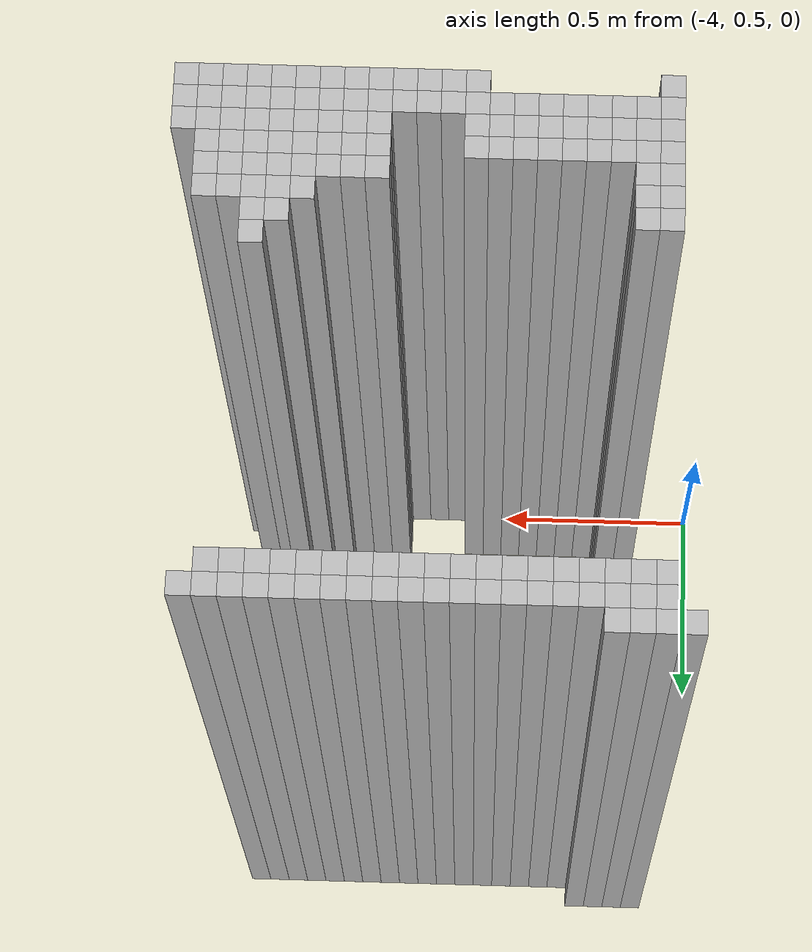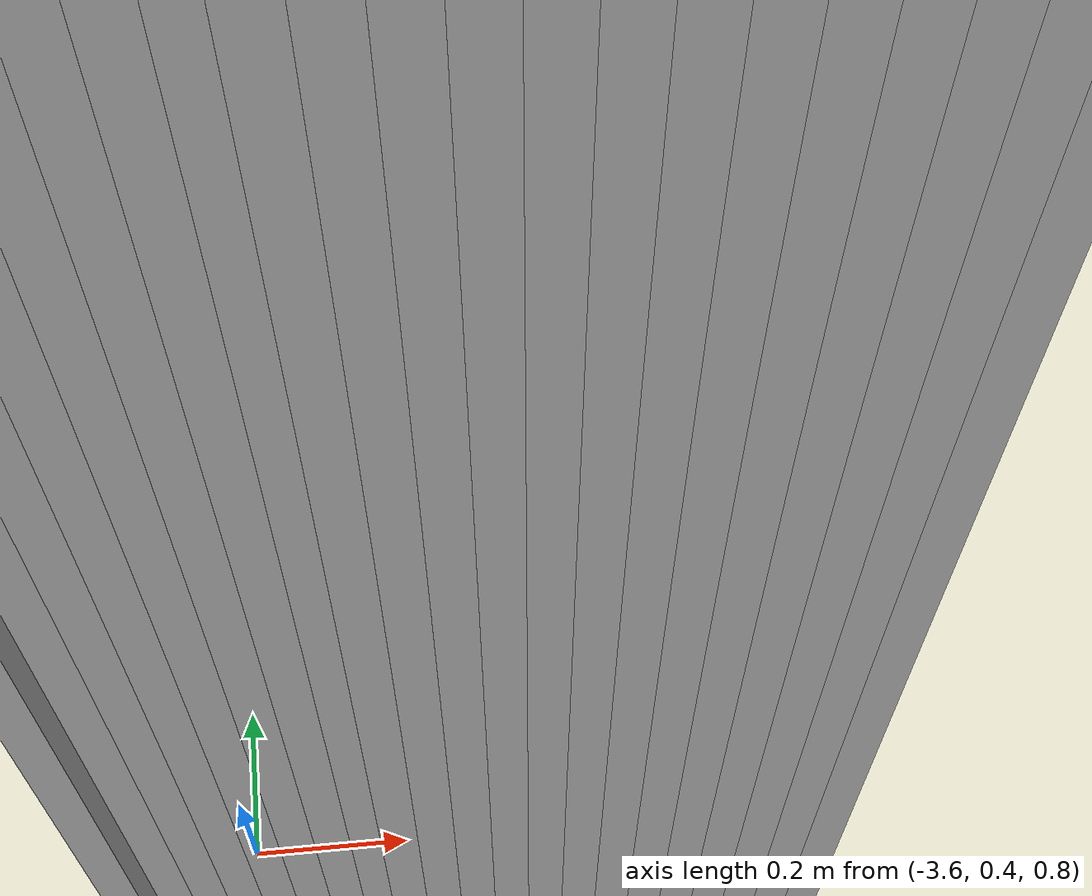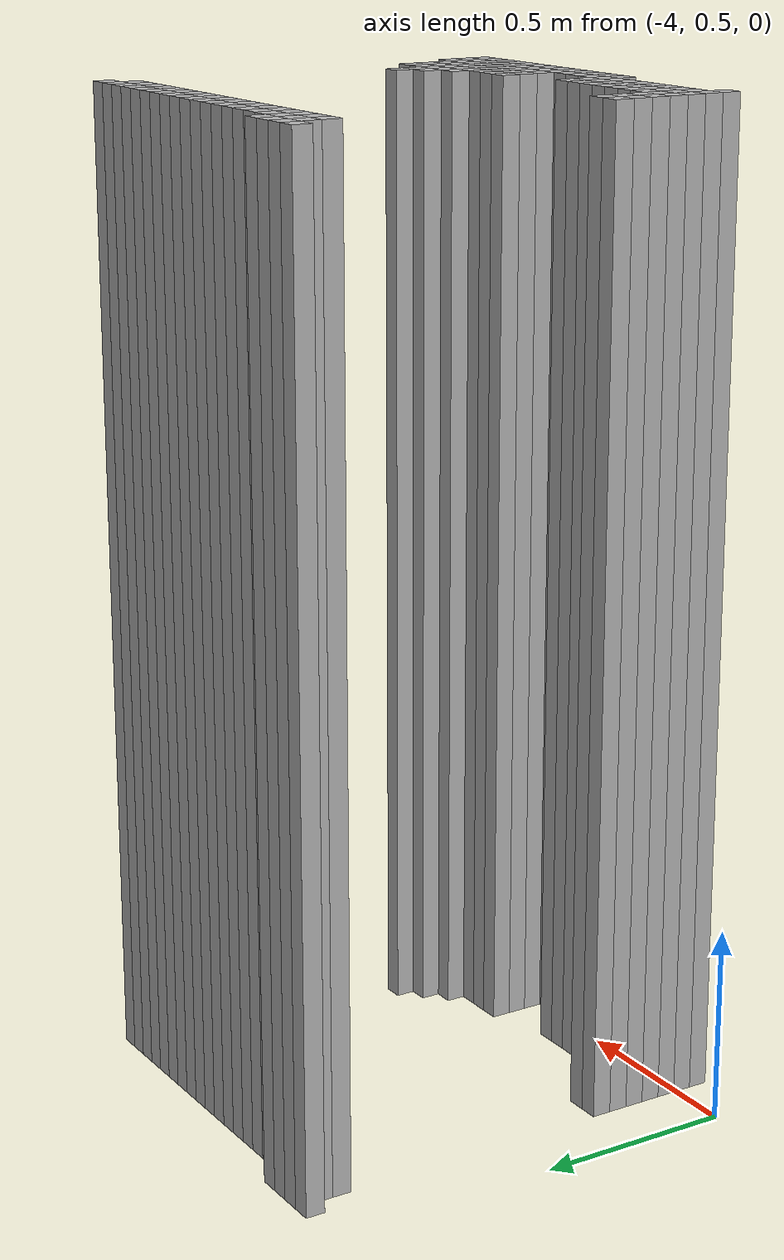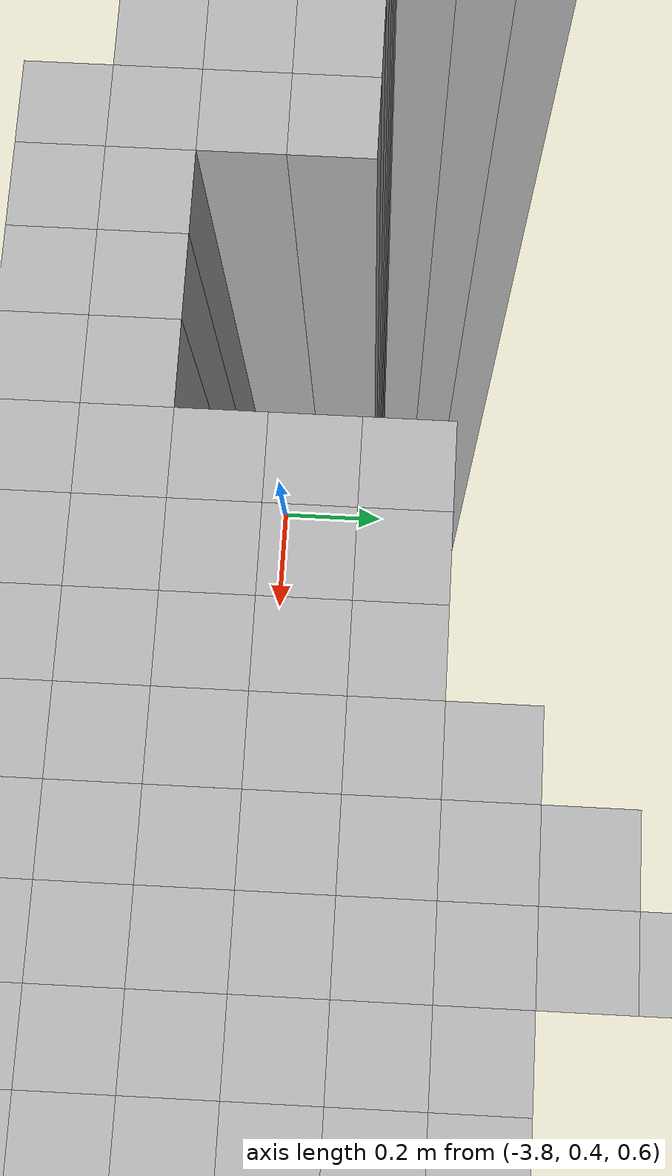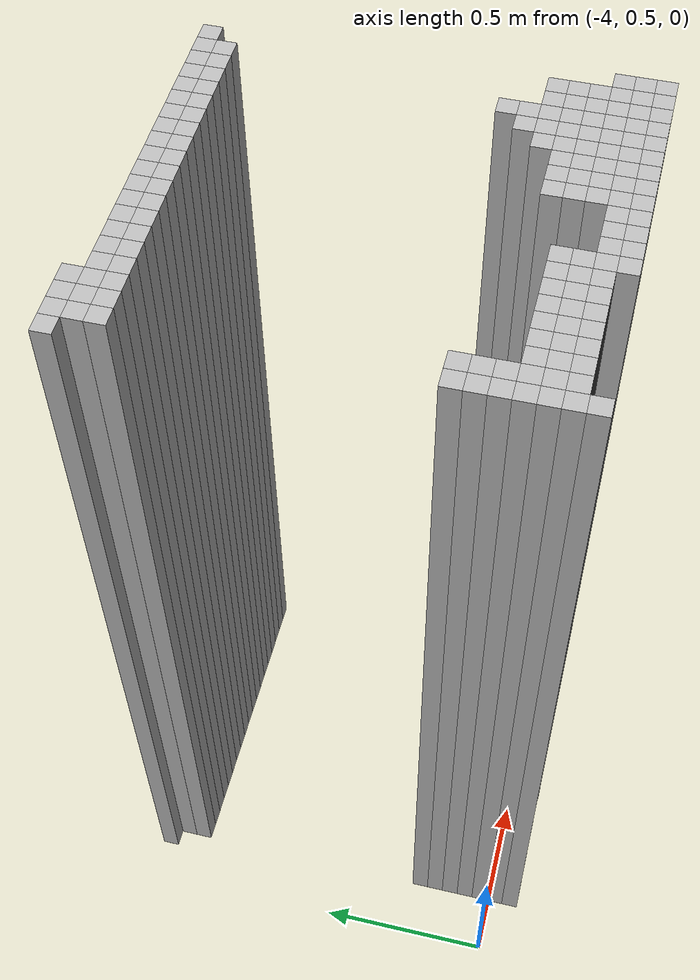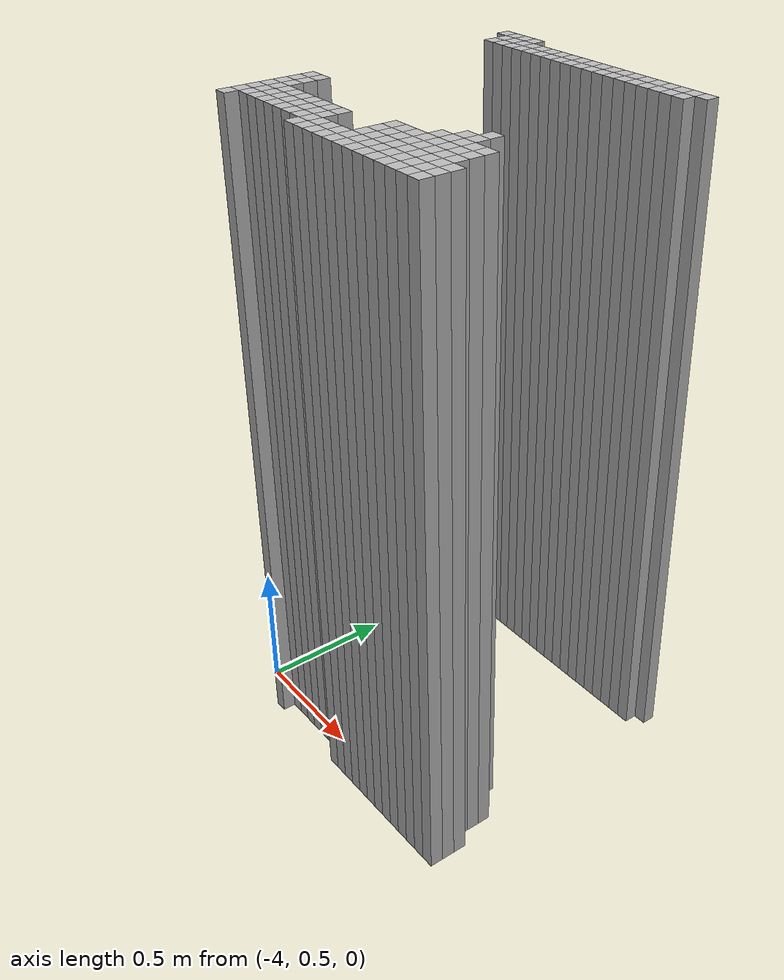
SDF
<sdf version="1.9">
 <world name="map_world">
  <model name="wall_146_122">
   <static>true</static>
   <pose>-3.861 1.580 1.250 0 0 0</pose>
   <link name="link">
    <collision name="collision"><geometry><box><size>0.050 0.050 2.500</size></box></geometry></collision>
    <visual name="visual"><geometry><box><size>0.050 0.050 2.500</size></box></geometry></visual>
   </link>
  </model>
  <model name="wall_147_122">
   <static>true</static>
   <pose>-3.811 1.580 1.250 0 0 0</pose>
   <link name="link">
    <collision name="collision"><geometry><box><size>0.050 0.050 2.500</size></box></geometry></collision>
    <visual name="visual"><geometry><box><size>0.050 0.050 2.500</size></box></geometry></visual>
   </link>
  </model>
  <model name="wall_148_122">
   <static>true</static>
   <pose>-3.761 1.580 1.250 0 0 0</pose>
   <link name="link">
    <collision name="collision"><geometry><box><size>0.050 0.050 2.500</size></box></geometry></collision>
    <visual name="visual"><geometry><box><size>0.050 0.050 2.500</size></box></geometry></visual>
   </link>
  </model>
  <model name="wall_149_122">
   <static>true</static>
   <pose>-3.711 1.580 1.250 0 0 0</pose>
   <link name="link">
    <collision name="collision"><geometry><box><size>0.050 0.050 2.500</size></box></geometry></collision>
    <visual name="visual"><geometry><box><size>0.050 0.050 2.500</size></box></geometry></visual>
   </link>
  </model>
  <model name="wall_147_123">
   <static>true</static>
   <pose>-3.811 1.530 1.250 0 0 0</pose>
   <link name="link">
    <collision name="collision"><geometry><box><size>0.050 0.050 2.500</size></box></geometry></collision>
    <visual name="visual"><geometry><box><size>0.050 0.050 2.500</size></box></geometry></visual>
   </link>
  </model>
  <model name="wall_148_123">
   <static>true</static>
   <pose>-3.761 1.530 1.250 0 0 0</pose>
   <link name="link">
    <collision name="collision"><geometry><box><size>0.050 0.050 2.500</size></box></geometry></collision>
    <visual name="visual"><geometry><box><size>0.050 0.050 2.500</size></box></geometry></visual>
   </link>
  </model>
  <model name="wall_149_123">
   <static>true</static>
   <pose>-3.711 1.530 1.250 0 0 0</pose>
   <link name="link">
    <collision name="collision"><geometry><box><size>0.050 0.050 2.500</size></box></geometry></collision>
    <visual name="visual"><geometry><box><size>0.050 0.050 2.500</size></box></geometry></visual>
   </link>
  </model>
  <model name="wall_150_123">
   <static>true</static>
   <pose>-3.661 1.530 1.250 0 0 0</pose>
   <link name="link">
    <collision name="collision"><geometry><box><size>0.050 0.050 2.500</size></box></geometry></collision>
    <visual name="visual"><geometry><box><size>0.050 0.050 2.500</size></box></geometry></visual>
   </link>
  </model>
  <model name="wall_151_123">
   <static>true</static>
   <pose>-3.611 1.530 1.250 0 0 0</pose>
   <link name="link">
    <collision name="collision"><geometry><box><size>0.050 0.050 2.500</size></box></geometry></collision>
    <visual name="visual"><geometry><box><size>0.050 0.050 2.500</size></box></geometry></visual>
   </link>
  </model>
  <model name="wall_152_123">
   <static>true</static>
   <pose>-3.561 1.530 1.250 0 0 0</pose>
   <link name="link">
    <collision name="collision"><geometry><box><size>0.050 0.050 2.500</size></box></geometry></collision>
    <visual name="visual"><geometry><box><size>0.050 0.050 2.500</size></box></geometry></visual>
   </link>
  </model>
  <model name="wall_153_123">
   <static>true</static>
   <pose>-3.511 1.530 1.250 0 0 0</pose>
   <link name="link">
    <collision name="collision"><geometry><box><size>0.050 0.050 2.500</size></box></geometry></collision>
    <visual name="visual"><geometry><box><size>0.050 0.050 2.500</size></box></geometry></visual>
   </link>
  </model>
  <model name="wall_154_123">
   <static>true</static>
   <pose>-3.461 1.530 1.250 0 0 0</pose>
   <link name="link">
    <collision name="collision"><geometry><box><size>0.050 0.050 2.500</size></box></geometry></collision>
    <visual name="visual"><geometry><box><size>0.050 0.050 2.500</size></box></geometry></visual>
   </link>
  </model>
  <model name="wall_155_123">
   <static>true</static>
   <pose>-3.411 1.530 1.250 0 0 0</pose>
   <link name="link">
    <collision name="collision"><geometry><box><size>0.050 0.050 2.500</size></box></geometry></collision>
    <visual name="visual"><geometry><box><size>0.050 0.050 2.500</size></box></geometry></visual>
   </link>
  </model>
  <model name="wall_156_123">
   <static>true</static>
   <pose>-3.361 1.530 1.250 0 0 0</pose>
   <link name="link">
    <collision name="collision"><geometry><box><size>0.050 0.050 2.500</size></box></geometry></collision>
    <visual name="visual"><geometry><box><size>0.050 0.050 2.500</size></box></geometry></visual>
   </link>
  </model>
  <model name="wall_157_123">
   <static>true</static>
   <pose>-3.311 1.530 1.250 0 0 0</pose>
   <link name="link">
    <collision name="collision"><geometry><box><size>0.050 0.050 2.500</size></box></geometry></collision>
    <visual name="visual"><geometry><box><size>0.050 0.050 2.500</size></box></geometry></visual>
   </link>
  </model>
  <model name="wall_158_123">
   <static>true</static>
   <pose>-3.261 1.530 1.250 0 0 0</pose>
   <link name="link">
    <collision name="collision"><geometry><box><size>0.050 0.050 2.500</size></box></geometry></collision>
    <visual name="visual"><geometry><box><size>0.050 0.050 2.500</size></box></geometry></visual>
   </link>
  </model>
  <model name="wall_159_123">
   <static>true</static>
   <pose>-3.211 1.530 1.250 0 0 0</pose>
   <link name="link">
    <collision name="collision"><geometry><box><size>0.050 0.050 2.500</size></box></geometry></collision>
    <visual name="visual"><geometry><box><size>0.050 0.050 2.500</size></box></geometry></visual>
   </link>
  </model>
  <model name="wall_160_123">
   <static>true</static>
   <pose>-3.161 1.530 1.250 0 0 0</pose>
   <link name="link">
    <collision name="collision"><geometry><box><size>0.050 0.050 2.500</size></box></geometry></collision>
    <visual name="visual"><geometry><box><size>0.050 0.050 2.500</size></box></geometry></visual>
   </link>
  </model>
  <model name="wall_161_123">
   <static>true</static>
   <pose>-3.111 1.530 1.250 0 0 0</pose>
   <link name="link">
    <collision name="collision"><geometry><box><size>0.050 0.050 2.500</size></box></geometry></collision>
    <visual name="visual"><geometry><box><size>0.050 0.050 2.500</size></box></geometry></visual>
   </link>
  </model>
  <model name="wall_162_123">
   <static>true</static>
   <pose>-3.061 1.530 1.250 0 0 0</pose>
   <link name="link">
    <collision name="collision"><geometry><box><size>0.050 0.050 2.500</size></box></geometry></collision>
    <visual name="visual"><geometry><box><size>0.050 0.050 2.500</size></box></geometry></visual>
   </link>
  </model>
  <model name="wall_163_123">
   <static>true</static>
   <pose>-3.011 1.530 1.250 0 0 0</pose>
   <link name="link">
    <collision name="collision"><geometry><box><size>0.050 0.050 2.500</size></box></geometry></collision>
    <visual name="visual"><geometry><box><size>0.050 0.050 2.500</size></box></geometry></visual>
   </link>
  </model>
  <model name="wall_164_123">
   <static>true</static>
   <pose>-2.961 1.530 1.250 0 0 0</pose>
   <link name="link">
    <collision name="collision"><geometry><box><size>0.050 0.050 2.500</size></box></geometry></collision>
    <visual name="visual"><geometry><box><size>0.050 0.050 2.500</size></box></geometry></visual>
   </link>
  </model>
  <model name="wall_165_123">
   <static>true</static>
   <pose>-2.911 1.530 1.250 0 0 0</pose>
   <link name="link">
    <collision name="collision"><geometry><box><size>0.050 0.050 2.500</size></box></geometry></collision>
    <visual name="visual"><geometry><box><size>0.050 0.050 2.500</size></box></geometry></visual>
   </link>
  </model>
  <model name="wall_166_123">
   <static>true</static>
   <pose>-2.861 1.530 1.250 0 0 0</pose>
   <link name="link">
    <collision name="collision"><geometry><box><size>0.050 0.050 2.500</size></box></geometry></collision>
    <visual name="visual"><geometry><box><size>0.050 0.050 2.500</size></box></geometry></visual>
   </link>
  </model>
  <model name="wall_147_124">
   <static>true</static>
   <pose>-3.811 1.480 1.250 0 0 0</pose>
   <link name="link">
    <collision name="collision"><geometry><box><size>0.050 0.050 2.500</size></box></geometry></collision>
    <visual name="visual"><geometry><box><size>0.050 0.050 2.500</size></box></geometry></visual>
   </link>
  </model>
  <model name="wall_148_124">
   <static>true</static>
   <pose>-3.761 1.480 1.250 0 0 0</pose>
   <link name="link">
    <collision name="collision"><geometry><box><size>0.050 0.050 2.500</size></box></geometry></collision>
    <visual name="visual"><geometry><box><size>0.050 0.050 2.500</size></box></geometry></visual>
   </link>
  </model>
  <model name="wall_149_124">
   <static>true</static>
   <pose>-3.711 1.480 1.250 0 0 0</pose>
   <link name="link">
    <collision name="collision"><geometry><box><size>0.050 0.050 2.500</size></box></geometry></collision>
    <visual name="visual"><geometry><box><size>0.050 0.050 2.500</size></box></geometry></visual>
   </link>
  </model>
  <model name="wall_150_124">
   <static>true</static>
   <pose>-3.661 1.480 1.250 0 0 0</pose>
   <link name="link">
    <collision name="collision"><geometry><box><size>0.050 0.050 2.500</size></box></geometry></collision>
    <visual name="visual"><geometry><box><size>0.050 0.050 2.500</size></box></geometry></visual>
   </link>
  </model>
  <model name="wall_151_124">
   <static>true</static>
   <pose>-3.611 1.480 1.250 0 0 0</pose>
   <link name="link">
    <collision name="collision"><geometry><box><size>0.050 0.050 2.500</size></box></geometry></collision>
    <visual name="visual"><geometry><box><size>0.050 0.050 2.500</size></box></geometry></visual>
   </link>
  </model>
  <model name="wall_152_124">
   <static>true</static>
   <pose>-3.561 1.480 1.250 0 0 0</pose>
   <link name="link">
    <collision name="collision"><geometry><box><size>0.050 0.050 2.500</size></box></geometry></collision>
    <visual name="visual"><geometry><box><size>0.050 0.050 2.500</size></box></geometry></visual>
   </link>
  </model>
  <model name="wall_153_124">
   <static>true</static>
   <pose>-3.511 1.480 1.250 0 0 0</pose>
   <link name="link">
    <collision name="collision"><geometry><box><size>0.050 0.050 2.500</size></box></geometry></collision>
    <visual name="visual"><geometry><box><size>0.050 0.050 2.500</size></box></geometry></visual>
   </link>
  </model>
  <model name="wall_154_124">
   <static>true</static>
   <pose>-3.461 1.480 1.250 0 0 0</pose>
   <link name="link">
    <collision name="collision"><geometry><box><size>0.050 0.050 2.500</size></box></geometry></collision>
    <visual name="visual"><geometry><box><size>0.050 0.050 2.500</size></box></geometry></visual>
   </link>
  </model>
  <model name="wall_155_124">
   <static>true</static>
   <pose>-3.411 1.480 1.250 0 0 0</pose>
   <link name="link">
    <collision name="collision"><geometry><box><size>0.050 0.050 2.500</size></box></geometry></collision>
    <visual name="visual"><geometry><box><size>0.050 0.050 2.500</size></box></geometry></visual>
   </link>
  </model>
  <model name="wall_156_124">
   <static>true</static>
   <pose>-3.361 1.480 1.250 0 0 0</pose>
   <link name="link">
    <collision name="collision"><geometry><box><size>0.050 0.050 2.500</size></box></geometry></collision>
    <visual name="visual"><geometry><box><size>0.050 0.050 2.500</size></box></geometry></visual>
   </link>
  </model>
  <model name="wall_157_124">
   <static>true</static>
   <pose>-3.311 1.480 1.250 0 0 0</pose>
   <link name="link">
    <collision name="collision"><geometry><box><size>0.050 0.050 2.500</size></box></geometry></collision>
    <visual name="visual"><geometry><box><size>0.050 0.050 2.500</size></box></geometry></visual>
   </link>
  </model>
  <model name="wall_158_124">
   <static>true</static>
   <pose>-3.261 1.480 1.250 0 0 0</pose>
   <link name="link">
    <collision name="collision"><geometry><box><size>0.050 0.050 2.500</size></box></geometry></collision>
    <visual name="visual"><geometry><box><size>0.050 0.050 2.500</size></box></geometry></visual>
   </link>
  </model>
  <model name="wall_159_124">
   <static>true</static>
   <pose>-3.211 1.480 1.250 0 0 0</pose>
   <link name="link">
    <collision name="collision"><geometry><box><size>0.050 0.050 2.500</size></box></geometry></collision>
    <visual name="visual"><geometry><box><size>0.050 0.050 2.500</size></box></geometry></visual>
   </link>
  </model>
  <model name="wall_160_124">
   <static>true</static>
   <pose>-3.161 1.480 1.250 0 0 0</pose>
   <link name="link">
    <collision name="collision"><geometry><box><size>0.050 0.050 2.500</size></box></geometry></collision>
    <visual name="visual"><geometry><box><size>0.050 0.050 2.500</size></box></geometry></visual>
   </link>
  </model>
  <model name="wall_161_124">
   <static>true</static>
   <pose>-3.111 1.480 1.250 0 0 0</pose>
   <link name="link">
    <collision name="collision"><geometry><box><size>0.050 0.050 2.500</size></box></geometry></collision>
    <visual name="visual"><geometry><box><size>0.050 0.050 2.500</size></box></geometry></visual>
   </link>
  </model>
  <model name="wall_162_124">
   <static>true</static>
   <pose>-3.061 1.480 1.250 0 0 0</pose>
   <link name="link">
    <collision name="collision"><geometry><box><size>0.050 0.050 2.500</size></box></geometry></collision>
    <visual name="visual"><geometry><box><size>0.050 0.050 2.500</size></box></geometry></visual>
   </link>
  </model>
  <model name="wall_163_124">
   <static>true</static>
   <pose>-3.011 1.480 1.250 0 0 0</pose>
   <link name="link">
    <collision name="collision"><geometry><box><size>0.050 0.050 2.500</size></box></geometry></collision>
    <visual name="visual"><geometry><box><size>0.050 0.050 2.500</size></box></geometry></visual>
   </link>
  </model>
  <model name="wall_164_124">
   <static>true</static>
   <pose>-2.961 1.480 1.250 0 0 0</pose>
   <link name="link">
    <collision name="collision"><geometry><box><size>0.050 0.050 2.500</size></box></geometry></collision>
    <visual name="visual"><geometry><box><size>0.050 0.050 2.500</size></box></geometry></visual>
   </link>
  </model>
  <model name="wall_165_124">
   <static>true</static>
   <pose>-2.911 1.480 1.250 0 0 0</pose>
   <link name="link">
    <collision name="collision"><geometry><box><size>0.050 0.050 2.500</size></box></geometry></collision>
    <visual name="visual"><geometry><box><size>0.050 0.050 2.500</size></box></geometry></visual>
   </link>
  </model>
  <model name="wall_164_138">
   <static>true</static>
   <pose>-2.961 0.780 1.250 0 0 0</pose>
   <link name="link">
    <collision name="collision"><geometry><box><size>0.050 0.050 2.500</size></box></geometry></collision>
    <visual name="visual"><geometry><box><size>0.050 0.050 2.500</size></box></geometry></visual>
   </link>
  </model>
  <model name="wall_147_139">
   <static>true</static>
   <pose>-3.811 0.730 1.250 0 0 0</pose>
   <link name="link">
    <collision name="collision"><geometry><box><size>0.050 0.050 2.500</size></box></geometry></collision>
    <visual name="visual"><geometry><box><size>0.050 0.050 2.500</size></box></geometry></visual>
   </link>
  </model>
  <model name="wall_148_139">
   <static>true</static>
   <pose>-3.761 0.730 1.250 0 0 0</pose>
   <link name="link">
    <collision name="collision"><geometry><box><size>0.050 0.050 2.500</size></box></geometry></collision>
    <visual name="visual"><geometry><box><size>0.050 0.050 2.500</size></box></geometry></visual>
   </link>
  </model>
  <model name="wall_163_139">
   <static>true</static>
   <pose>-3.011 0.730 1.250 0 0 0</pose>
   <link name="link">
    <collision name="collision"><geometry><box><size>0.050 0.050 2.500</size></box></geometry></collision>
    <visual name="visual"><geometry><box><size>0.050 0.050 2.500</size></box></geometry></visual>
   </link>
  </model>
  <model name="wall_164_139">
   <static>true</static>
   <pose>-2.961 0.730 1.250 0 0 0</pose>
   <link name="link">
    <collision name="collision"><geometry><box><size>0.050 0.050 2.500</size></box></geometry></collision>
    <visual name="visual"><geometry><box><size>0.050 0.050 2.500</size></box></geometry></visual>
   </link>
  </model>
  <model name="wall_147_140">
   <static>true</static>
   <pose>-3.811 0.680 1.250 0 0 0</pose>
   <link name="link">
    <collision name="collision"><geometry><box><size>0.050 0.050 2.500</size></box></geometry></collision>
    <visual name="visual"><geometry><box><size>0.050 0.050 2.500</size></box></geometry></visual>
   </link>
  </model>
  <model name="wall_148_140">
   <static>true</static>
   <pose>-3.761 0.680 1.250 0 0 0</pose>
   <link name="link">
    <collision name="collision"><geometry><box><size>0.050 0.050 2.500</size></box></geometry></collision>
    <visual name="visual"><geometry><box><size>0.050 0.050 2.500</size></box></geometry></visual>
   </link>
  </model>
  <model name="wall_162_140">
   <static>true</static>
   <pose>-3.061 0.680 1.250 0 0 0</pose>
   <link name="link">
    <collision name="collision"><geometry><box><size>0.050 0.050 2.500</size></box></geometry></collision>
    <visual name="visual"><geometry><box><size>0.050 0.050 2.500</size></box></geometry></visual>
   </link>
  </model>
  <model name="wall_163_140">
   <static>true</static>
   <pose>-3.011 0.680 1.250 0 0 0</pose>
   <link name="link">
    <collision name="collision"><geometry><box><size>0.050 0.050 2.500</size></box></geometry></collision>
    <visual name="visual"><geometry><box><size>0.050 0.050 2.500</size></box></geometry></visual>
   </link>
  </model>
  <model name="wall_164_140">
   <static>true</static>
   <pose>-2.961 0.680 1.250 0 0 0</pose>
   <link name="link">
    <collision name="collision"><geometry><box><size>0.050 0.050 2.500</size></box></geometry></collision>
    <visual name="visual"><geometry><box><size>0.050 0.050 2.500</size></box></geometry></visual>
   </link>
  </model>
  <model name="wall_165_140">
   <static>true</static>
   <pose>-2.911 0.680 1.250 0 0 0</pose>
   <link name="link">
    <collision name="collision"><geometry><box><size>0.050 0.050 2.500</size></box></geometry></collision>
    <visual name="visual"><geometry><box><size>0.050 0.050 2.500</size></box></geometry></visual>
   </link>
  </model>
  <model name="wall_166_140">
   <static>true</static>
   <pose>-2.861 0.680 1.250 0 0 0</pose>
   <link name="link">
    <collision name="collision"><geometry><box><size>0.050 0.050 2.500</size></box></geometry></collision>
    <visual name="visual"><geometry><box><size>0.050 0.050 2.500</size></box></geometry></visual>
   </link>
  </model>
  <model name="wall_147_141">
   <static>true</static>
   <pose>-3.811 0.630 1.250 0 0 0</pose>
   <link name="link">
    <collision name="collision"><geometry><box><size>0.050 0.050 2.500</size></box></geometry></collision>
    <visual name="visual"><geometry><box><size>0.050 0.050 2.500</size></box></geometry></visual>
   </link>
  </model>
  <model name="wall_148_141">
   <static>true</static>
   <pose>-3.761 0.630 1.250 0 0 0</pose>
   <link name="link">
    <collision name="collision"><geometry><box><size>0.050 0.050 2.500</size></box></geometry></collision>
    <visual name="visual"><geometry><box><size>0.050 0.050 2.500</size></box></geometry></visual>
   </link>
  </model>
  <model name="wall_159_141">
   <static>true</static>
   <pose>-3.211 0.630 1.250 0 0 0</pose>
   <link name="link">
    <collision name="collision"><geometry><box><size>0.050 0.050 2.500</size></box></geometry></collision>
    <visual name="visual"><geometry><box><size>0.050 0.050 2.500</size></box></geometry></visual>
   </link>
  </model>
  <model name="wall_160_141">
   <static>true</static>
   <pose>-3.161 0.630 1.250 0 0 0</pose>
   <link name="link">
    <collision name="collision"><geometry><box><size>0.050 0.050 2.500</size></box></geometry></collision>
    <visual name="visual"><geometry><box><size>0.050 0.050 2.500</size></box></geometry></visual>
   </link>
  </model>
  <model name="wall_161_141">
   <static>true</static>
   <pose>-3.111 0.630 1.250 0 0 0</pose>
   <link name="link">
    <collision name="collision"><geometry><box><size>0.050 0.050 2.500</size></box></geometry></collision>
    <visual name="visual"><geometry><box><size>0.050 0.050 2.500</size></box></geometry></visual>
   </link>
  </model>
  <model name="wall_162_141">
   <static>true</static>
   <pose>-3.061 0.630 1.250 0 0 0</pose>
   <link name="link">
    <collision name="collision"><geometry><box><size>0.050 0.050 2.500</size></box></geometry></collision>
    <visual name="visual"><geometry><box><size>0.050 0.050 2.500</size></box></geometry></visual>
   </link>
  </model>
  <model name="wall_163_141">
   <static>true</static>
   <pose>-3.011 0.630 1.250 0 0 0</pose>
   <link name="link">
    <collision name="collision"><geometry><box><size>0.050 0.050 2.500</size></box></geometry></collision>
    <visual name="visual"><geometry><box><size>0.050 0.050 2.500</size></box></geometry></visual>
   </link>
  </model>
  <model name="wall_164_141">
   <static>true</static>
   <pose>-2.961 0.630 1.250 0 0 0</pose>
   <link name="link">
    <collision name="collision"><geometry><box><size>0.050 0.050 2.500</size></box></geometry></collision>
    <visual name="visual"><geometry><box><size>0.050 0.050 2.500</size></box></geometry></visual>
   </link>
  </model>
  <model name="wall_165_141">
   <static>true</static>
   <pose>-2.911 0.630 1.250 0 0 0</pose>
   <link name="link">
    <collision name="collision"><geometry><box><size>0.050 0.050 2.500</size></box></geometry></collision>
    <visual name="visual"><geometry><box><size>0.050 0.050 2.500</size></box></geometry></visual>
   </link>
  </model>
  <model name="wall_166_141">
   <static>true</static>
   <pose>-2.861 0.630 1.250 0 0 0</pose>
   <link name="link">
    <collision name="collision"><geometry><box><size>0.050 0.050 2.500</size></box></geometry></collision>
    <visual name="visual"><geometry><box><size>0.050 0.050 2.500</size></box></geometry></visual>
   </link>
  </model>
  <model name="wall_147_142">
   <static>true</static>
   <pose>-3.811 0.580 1.250 0 0 0</pose>
   <link name="link">
    <collision name="collision"><geometry><box><size>0.050 0.050 2.500</size></box></geometry></collision>
    <visual name="visual"><geometry><box><size>0.050 0.050 2.500</size></box></geometry></visual>
   </link>
  </model>
  <model name="wall_148_142">
   <static>true</static>
   <pose>-3.761 0.580 1.250 0 0 0</pose>
   <link name="link">
    <collision name="collision"><geometry><box><size>0.050 0.050 2.500</size></box></geometry></collision>
    <visual name="visual"><geometry><box><size>0.050 0.050 2.500</size></box></geometry></visual>
   </link>
  </model>
  <model name="wall_149_142">
   <static>true</static>
   <pose>-3.711 0.580 1.250 0 0 0</pose>
   <link name="link">
    <collision name="collision"><geometry><box><size>0.050 0.050 2.500</size></box></geometry></collision>
    <visual name="visual"><geometry><box><size>0.050 0.050 2.500</size></box></geometry></visual>
   </link>
  </model>
  <model name="wall_150_142">
   <static>true</static>
   <pose>-3.661 0.580 1.250 0 0 0</pose>
   <link name="link">
    <collision name="collision"><geometry><box><size>0.050 0.050 2.500</size></box></geometry></collision>
    <visual name="visual"><geometry><box><size>0.050 0.050 2.500</size></box></geometry></visual>
   </link>
  </model>
  <model name="wall_151_142">
   <static>true</static>
   <pose>-3.611 0.580 1.250 0 0 0</pose>
   <link name="link">
    <collision name="collision"><geometry><box><size>0.050 0.050 2.500</size></box></geometry></collision>
    <visual name="visual"><geometry><box><size>0.050 0.050 2.500</size></box></geometry></visual>
   </link>
  </model>
  <model name="wall_152_142">
   <static>true</static>
   <pose>-3.561 0.580 1.250 0 0 0</pose>
   <link name="link">
    <collision name="collision"><geometry><box><size>0.050 0.050 2.500</size></box></geometry></collision>
    <visual name="visual"><geometry><box><size>0.050 0.050 2.500</size></box></geometry></visual>
   </link>
  </model>
  <model name="wall_153_142">
   <static>true</static>
   <pose>-3.511 0.580 1.250 0 0 0</pose>
   <link name="link">
    <collision name="collision"><geometry><box><size>0.050 0.050 2.500</size></box></geometry></collision>
    <visual name="visual"><geometry><box><size>0.050 0.050 2.500</size></box></geometry></visual>
   </link>
  </model>
  <model name="wall_154_142">
   <static>true</static>
   <pose>-3.461 0.580 1.250 0 0 0</pose>
   <link name="link">
    <collision name="collision"><geometry><box><size>0.050 0.050 2.500</size></box></geometry></collision>
    <visual name="visual"><geometry><box><size>0.050 0.050 2.500</size></box></geometry></visual>
   </link>
  </model>
  <model name="wall_155_142">
   <static>true</static>
   <pose>-3.411 0.580 1.250 0 0 0</pose>
   <link name="link">
    <collision name="collision"><geometry><box><size>0.050 0.050 2.500</size></box></geometry></collision>
    <visual name="visual"><geometry><box><size>0.050 0.050 2.500</size></box></geometry></visual>
   </link>
  </model>
  <model name="wall_159_142">
   <static>true</static>
   <pose>-3.211 0.580 1.250 0 0 0</pose>
   <link name="link">
    <collision name="collision"><geometry><box><size>0.050 0.050 2.500</size></box></geometry></collision>
    <visual name="visual"><geometry><box><size>0.050 0.050 2.500</size></box></geometry></visual>
   </link>
  </model>
  <model name="wall_160_142">
   <static>true</static>
   <pose>-3.161 0.580 1.250 0 0 0</pose>
   <link name="link">
    <collision name="collision"><geometry><box><size>0.050 0.050 2.500</size></box></geometry></collision>
    <visual name="visual"><geometry><box><size>0.050 0.050 2.500</size></box></geometry></visual>
   </link>
  </model>
  <model name="wall_161_142">
   <static>true</static>
   <pose>-3.111 0.580 1.250 0 0 0</pose>
   <link name="link">
    <collision name="collision"><geometry><box><size>0.050 0.050 2.500</size></box></geometry></collision>
    <visual name="visual"><geometry><box><size>0.050 0.050 2.500</size></box></geometry></visual>
   </link>
  </model>
  <model name="wall_162_142">
   <static>true</static>
   <pose>-3.061 0.580 1.250 0 0 0</pose>
   <link name="link">
    <collision name="collision"><geometry><box><size>0.050 0.050 2.500</size></box></geometry></collision>
    <visual name="visual"><geometry><box><size>0.050 0.050 2.500</size></box></geometry></visual>
   </link>
  </model>
  <model name="wall_163_142">
   <static>true</static>
   <pose>-3.011 0.580 1.250 0 0 0</pose>
   <link name="link">
    <collision name="collision"><geometry><box><size>0.050 0.050 2.500</size></box></geometry></collision>
    <visual name="visual"><geometry><box><size>0.050 0.050 2.500</size></box></geometry></visual>
   </link>
  </model>
  <model name="wall_164_142">
   <static>true</static>
   <pose>-2.961 0.580 1.250 0 0 0</pose>
   <link name="link">
    <collision name="collision"><geometry><box><size>0.050 0.050 2.500</size></box></geometry></collision>
    <visual name="visual"><geometry><box><size>0.050 0.050 2.500</size></box></geometry></visual>
   </link>
  </model>
  <model name="wall_165_142">
   <static>true</static>
   <pose>-2.911 0.580 1.250 0 0 0</pose>
   <link name="link">
    <collision name="collision"><geometry><box><size>0.050 0.050 2.500</size></box></geometry></collision>
    <visual name="visual"><geometry><box><size>0.050 0.050 2.500</size></box></geometry></visual>
   </link>
  </model>
  <model name="wall_166_142">
   <static>true</static>
   <pose>-2.861 0.580 1.250 0 0 0</pose>
   <link name="link">
    <collision name="collision"><geometry><box><size>0.050 0.050 2.500</size></box></geometry></collision>
    <visual name="visual"><geometry><box><size>0.050 0.050 2.500</size></box></geometry></visual>
   </link>
  </model>
  <model name="wall_147_143">
   <static>true</static>
   <pose>-3.811 0.530 1.250 0 0 0</pose>
   <link name="link">
    <collision name="collision"><geometry><box><size>0.050 0.050 2.500</size></box></geometry></collision>
    <visual name="visual"><geometry><box><size>0.050 0.050 2.500</size></box></geometry></visual>
   </link>
  </model>
  <model name="wall_148_143">
   <static>true</static>
   <pose>-3.761 0.530 1.250 0 0 0</pose>
   <link name="link">
    <collision name="collision"><geometry><box><size>0.050 0.050 2.500</size></box></geometry></collision>
    <visual name="visual"><geometry><box><size>0.050 0.050 2.500</size></box></geometry></visual>
   </link>
  </model>
  <model name="wall_149_143">
   <static>true</static>
   <pose>-3.711 0.530 1.250 0 0 0</pose>
   <link name="link">
    <collision name="collision"><geometry><box><size>0.050 0.050 2.500</size></box></geometry></collision>
    <visual name="visual"><geometry><box><size>0.050 0.050 2.500</size></box></geometry></visual>
   </link>
  </model>
  <model name="wall_150_143">
   <static>true</static>
   <pose>-3.661 0.530 1.250 0 0 0</pose>
   <link name="link">
    <collision name="collision"><geometry><box><size>0.050 0.050 2.500</size></box></geometry></collision>
    <visual name="visual"><geometry><box><size>0.050 0.050 2.500</size></box></geometry></visual>
   </link>
  </model>
  <model name="wall_151_143">
   <static>true</static>
   <pose>-3.611 0.530 1.250 0 0 0</pose>
   <link name="link">
    <collision name="collision"><geometry><box><size>0.050 0.050 2.500</size></box></geometry></collision>
    <visual name="visual"><geometry><box><size>0.050 0.050 2.500</size></box></geometry></visual>
   </link>
  </model>
  <model name="wall_152_143">
   <static>true</static>
   <pose>-3.561 0.530 1.250 0 0 0</pose>
   <link name="link">
    <collision name="collision"><geometry><box><size>0.050 0.050 2.500</size></box></geometry></collision>
    <visual name="visual"><geometry><box><size>0.050 0.050 2.500</size></box></geometry></visual>
   </link>
  </model>
  <model name="wall_153_143">
   <static>true</static>
   <pose>-3.511 0.530 1.250 0 0 0</pose>
   <link name="link">
    <collision name="collision"><geometry><box><size>0.050 0.050 2.500</size></box></geometry></collision>
    <visual name="visual"><geometry><box><size>0.050 0.050 2.500</size></box></geometry></visual>
   </link>
  </model>
  <model name="wall_154_143">
   <static>true</static>
   <pose>-3.461 0.530 1.250 0 0 0</pose>
   <link name="link">
    <collision name="collision"><geometry><box><size>0.050 0.050 2.500</size></box></geometry></collision>
    <visual name="visual"><geometry><box><size>0.050 0.050 2.500</size></box></geometry></visual>
   </link>
  </model>
  <model name="wall_155_143">
   <static>true</static>
   <pose>-3.411 0.530 1.250 0 0 0</pose>
   <link name="link">
    <collision name="collision"><geometry><box><size>0.050 0.050 2.500</size></box></geometry></collision>
    <visual name="visual"><geometry><box><size>0.050 0.050 2.500</size></box></geometry></visual>
   </link>
  </model>
  <model name="wall_159_143">
   <static>true</static>
   <pose>-3.211 0.530 1.250 0 0 0</pose>
   <link name="link">
    <collision name="collision"><geometry><box><size>0.050 0.050 2.500</size></box></geometry></collision>
    <visual name="visual"><geometry><box><size>0.050 0.050 2.500</size></box></geometry></visual>
   </link>
  </model>
  <model name="wall_160_143">
   <static>true</static>
   <pose>-3.161 0.530 1.250 0 0 0</pose>
   <link name="link">
    <collision name="collision"><geometry><box><size>0.050 0.050 2.500</size></box></geometry></collision>
    <visual name="visual"><geometry><box><size>0.050 0.050 2.500</size></box></geometry></visual>
   </link>
  </model>
  <model name="wall_161_143">
   <static>true</static>
   <pose>-3.111 0.530 1.250 0 0 0</pose>
   <link name="link">
    <collision name="collision"><geometry><box><size>0.050 0.050 2.500</size></box></geometry></collision>
    <visual name="visual"><geometry><box><size>0.050 0.050 2.500</size></box></geometry></visual>
   </link>
  </model>
  <model name="wall_162_143">
   <static>true</static>
   <pose>-3.061 0.530 1.250 0 0 0</pose>
   <link name="link">
    <collision name="collision"><geometry><box><size>0.050 0.050 2.500</size></box></geometry></collision>
    <visual name="visual"><geometry><box><size>0.050 0.050 2.500</size></box></geometry></visual>
   </link>
  </model>
  <model name="wall_163_143">
   <static>true</static>
   <pose>-3.011 0.530 1.250 0 0 0</pose>
   <link name="link">
    <collision name="collision"><geometry><box><size>0.050 0.050 2.500</size></box></geometry></collision>
    <visual name="visual"><geometry><box><size>0.050 0.050 2.500</size></box></geometry></visual>
   </link>
  </model>
  <model name="wall_164_143">
   <static>true</static>
   <pose>-2.961 0.530 1.250 0 0 0</pose>
   <link name="link">
    <collision name="collision"><geometry><box><size>0.050 0.050 2.500</size></box></geometry></collision>
    <visual name="visual"><geometry><box><size>0.050 0.050 2.500</size></box></geometry></visual>
   </link>
  </model>
  <model name="wall_165_143">
   <static>true</static>
   <pose>-2.911 0.530 1.250 0 0 0</pose>
   <link name="link">
    <collision name="collision"><geometry><box><size>0.050 0.050 2.500</size></box></geometry></collision>
    <visual name="visual"><geometry><box><size>0.050 0.050 2.500</size></box></geometry></visual>
   </link>
  </model>
  <model name="wall_166_143">
   <static>true</static>
   <pose>-2.861 0.530 1.250 0 0 0</pose>
   <link name="link">
    <collision name="collision"><geometry><box><size>0.050 0.050 2.500</size></box></geometry></collision>
    <visual name="visual"><geometry><box><size>0.050 0.050 2.500</size></box></geometry></visual>
   </link>
  </model>
  <model name="wall_167_143">
   <static>true</static>
   <pose>-2.811 0.530 1.250 0 0 0</pose>
   <link name="link">
    <collision name="collision"><geometry><box><size>0.050 0.050 2.500</size></box></geometry></collision>
    <visual name="visual"><geometry><box><size>0.050 0.050 2.500</size></box></geometry></visual>
   </link>
  </model>
  <model name="wall_147_144">
   <static>true</static>
   <pose>-3.811 0.480 1.250 0 0 0</pose>
   <link name="link">
    <collision name="collision"><geometry><box><size>0.050 0.050 2.500</size></box></geometry></collision>
    <visual name="visual"><geometry><box><size>0.050 0.050 2.500</size></box></geometry></visual>
   </link>
  </model>
  <model name="wall_148_144">
   <static>true</static>
   <pose>-3.761 0.480 1.250 0 0 0</pose>
   <link name="link">
    <collision name="collision"><geometry><box><size>0.050 0.050 2.500</size></box></geometry></collision>
    <visual name="visual"><geometry><box><size>0.050 0.050 2.500</size></box></geometry></visual>
   </link>
  </model>
  <model name="wall_149_144">
   <static>true</static>
   <pose>-3.711 0.480 1.250 0 0 0</pose>
   <link name="link">
    <collision name="collision"><geometry><box><size>0.050 0.050 2.500</size></box></geometry></collision>
    <visual name="visual"><geometry><box><size>0.050 0.050 2.500</size></box></geometry></visual>
   </link>
  </model>
  <model name="wall_150_144">
   <static>true</static>
   <pose>-3.661 0.480 1.250 0 0 0</pose>
   <link name="link">
    <collision name="collision"><geometry><box><size>0.050 0.050 2.500</size></box></geometry></collision>
    <visual name="visual"><geometry><box><size>0.050 0.050 2.500</size></box></geometry></visual>
   </link>
  </model>
  <model name="wall_151_144">
   <static>true</static>
   <pose>-3.611 0.480 1.250 0 0 0</pose>
   <link name="link">
    <collision name="collision"><geometry><box><size>0.050 0.050 2.500</size></box></geometry></collision>
    <visual name="visual"><geometry><box><size>0.050 0.050 2.500</size></box></geometry></visual>
   </link>
  </model>
  <model name="wall_152_144">
   <static>true</static>
   <pose>-3.561 0.480 1.250 0 0 0</pose>
   <link name="link">
    <collision name="collision"><geometry><box><size>0.050 0.050 2.500</size></box></geometry></collision>
    <visual name="visual"><geometry><box><size>0.050 0.050 2.500</size></box></geometry></visual>
   </link>
  </model>
  <model name="wall_153_144">
   <static>true</static>
   <pose>-3.511 0.480 1.250 0 0 0</pose>
   <link name="link">
    <collision name="collision"><geometry><box><size>0.050 0.050 2.500</size></box></geometry></collision>
    <visual name="visual"><geometry><box><size>0.050 0.050 2.500</size></box></geometry></visual>
   </link>
  </model>
  <model name="wall_154_144">
   <static>true</static>
   <pose>-3.461 0.480 1.250 0 0 0</pose>
   <link name="link">
    <collision name="collision"><geometry><box><size>0.050 0.050 2.500</size></box></geometry></collision>
    <visual name="visual"><geometry><box><size>0.050 0.050 2.500</size></box></geometry></visual>
   </link>
  </model>
  <model name="wall_155_144">
   <static>true</static>
   <pose>-3.411 0.480 1.250 0 0 0</pose>
   <link name="link">
    <collision name="collision"><geometry><box><size>0.050 0.050 2.500</size></box></geometry></collision>
    <visual name="visual"><geometry><box><size>0.050 0.050 2.500</size></box></geometry></visual>
   </link>
  </model>
  <model name="wall_156_144">
   <static>true</static>
   <pose>-3.361 0.480 1.250 0 0 0</pose>
   <link name="link">
    <collision name="collision"><geometry><box><size>0.050 0.050 2.500</size></box></geometry></collision>
    <visual name="visual"><geometry><box><size>0.050 0.050 2.500</size></box></geometry></visual>
   </link>
  </model>
  <model name="wall_157_144">
   <static>true</static>
   <pose>-3.311 0.480 1.250 0 0 0</pose>
   <link name="link">
    <collision name="collision"><geometry><box><size>0.050 0.050 2.500</size></box></geometry></collision>
    <visual name="visual"><geometry><box><size>0.050 0.050 2.500</size></box></geometry></visual>
   </link>
  </model>
  <model name="wall_158_144">
   <static>true</static>
   <pose>-3.261 0.480 1.250 0 0 0</pose>
   <link name="link">
    <collision name="collision"><geometry><box><size>0.050 0.050 2.500</size></box></geometry></collision>
    <visual name="visual"><geometry><box><size>0.050 0.050 2.500</size></box></geometry></visual>
   </link>
  </model>
  <model name="wall_159_144">
   <static>true</static>
   <pose>-3.211 0.480 1.250 0 0 0</pose>
   <link name="link">
    <collision name="collision"><geometry><box><size>0.050 0.050 2.500</size></box></geometry></collision>
    <visual name="visual"><geometry><box><size>0.050 0.050 2.500</size></box></geometry></visual>
   </link>
  </model>
  <model name="wall_160_144">
   <static>true</static>
   <pose>-3.161 0.480 1.250 0 0 0</pose>
   <link name="link">
    <collision name="collision"><geometry><box><size>0.050 0.050 2.500</size></box></geometry></collision>
    <visual name="visual"><geometry><box><size>0.050 0.050 2.500</size></box></geometry></visual>
   </link>
  </model>
  <model name="wall_161_144">
   <static>true</static>
   <pose>-3.111 0.480 1.250 0 0 0</pose>
   <link name="link">
    <collision name="collision"><geometry><box><size>0.050 0.050 2.500</size></box></geometry></collision>
    <visual name="visual"><geometry><box><size>0.050 0.050 2.500</size></box></geometry></visual>
   </link>
  </model>
  <model name="wall_162_144">
   <static>true</static>
   <pose>-3.061 0.480 1.250 0 0 0</pose>
   <link name="link">
    <collision name="collision"><geometry><box><size>0.050 0.050 2.500</size></box></geometry></collision>
    <visual name="visual"><geometry><box><size>0.050 0.050 2.500</size></box></geometry></visual>
   </link>
  </model>
  <model name="wall_163_144">
   <static>true</static>
   <pose>-3.011 0.480 1.250 0 0 0</pose>
   <link name="link">
    <collision name="collision"><geometry><box><size>0.050 0.050 2.500</size></box></geometry></collision>
    <visual name="visual"><geometry><box><size>0.050 0.050 2.500</size></box></geometry></visual>
   </link>
  </model>
  <model name="wall_164_144">
   <static>true</static>
   <pose>-2.961 0.480 1.250 0 0 0</pose>
   <link name="link">
    <collision name="collision"><geometry><box><size>0.050 0.050 2.500</size></box></geometry></collision>
    <visual name="visual"><geometry><box><size>0.050 0.050 2.500</size></box></geometry></visual>
   </link>
  </model>
  <model name="wall_165_144">
   <static>true</static>
   <pose>-2.911 0.480 1.250 0 0 0</pose>
   <link name="link">
    <collision name="collision"><geometry><box><size>0.050 0.050 2.500</size></box></geometry></collision>
    <visual name="visual"><geometry><box><size>0.050 0.050 2.500</size></box></geometry></visual>
   </link>
  </model>
  <model name="wall_166_144">
   <static>true</static>
   <pose>-2.861 0.480 1.250 0 0 0</pose>
   <link name="link">
    <collision name="collision"><geometry><box><size>0.050 0.050 2.500</size></box></geometry></collision>
    <visual name="visual"><geometry><box><size>0.050 0.050 2.500</size></box></geometry></visual>
   </link>
  </model>
  <model name="wall_167_144">
   <static>true</static>
   <pose>-2.811 0.480 1.250 0 0 0</pose>
   <link name="link">
    <collision name="collision"><geometry><box><size>0.050 0.050 2.500</size></box></geometry></collision>
    <visual name="visual"><geometry><box><size>0.050 0.050 2.500</size></box></geometry></visual>
   </link>
  </model>
  <model name="wall_147_145">
   <static>true</static>
   <pose>-3.811 0.430 1.250 0 0 0</pose>
   <link name="link">
    <collision name="collision"><geometry><box><size>0.050 0.050 2.500</size></box></geometry></collision>
    <visual name="visual"><geometry><box><size>0.050 0.050 2.500</size></box></geometry></visual>
   </link>
  </model>
  <model name="wall_155_145">
   <static>true</static>
   <pose>-3.411 0.430 1.250 0 0 0</pose>
   <link name="link">
    <collision name="collision"><geometry><box><size>0.050 0.050 2.500</size></box></geometry></collision>
    <visual name="visual"><geometry><box><size>0.050 0.050 2.500</size></box></geometry></visual>
   </link>
  </model>
  <model name="wall_156_145">
   <static>true</static>
   <pose>-3.361 0.430 1.250 0 0 0</pose>
   <link name="link">
    <collision name="collision"><geometry><box><size>0.050 0.050 2.500</size></box></geometry></collision>
    <visual name="visual"><geometry><box><size>0.050 0.050 2.500</size></box></geometry></visual>
   </link>
  </model>
  <model name="wall_157_145">
   <static>true</static>
   <pose>-3.311 0.430 1.250 0 0 0</pose>
   <link name="link">
    <collision name="collision"><geometry><box><size>0.050 0.050 2.500</size></box></geometry></collision>
    <visual name="visual"><geometry><box><size>0.050 0.050 2.500</size></box></geometry></visual>
   </link>
  </model>
  <model name="wall_158_145">
   <static>true</static>
   <pose>-3.261 0.430 1.250 0 0 0</pose>
   <link name="link">
    <collision name="collision"><geometry><box><size>0.050 0.050 2.500</size></box></geometry></collision>
    <visual name="visual"><geometry><box><size>0.050 0.050 2.500</size></box></geometry></visual>
   </link>
  </model>
  <model name="wall_159_145">
   <static>true</static>
   <pose>-3.211 0.430 1.250 0 0 0</pose>
   <link name="link">
    <collision name="collision"><geometry><box><size>0.050 0.050 2.500</size></box></geometry></collision>
    <visual name="visual"><geometry><box><size>0.050 0.050 2.500</size></box></geometry></visual>
   </link>
  </model>
  <model name="wall_160_145">
   <static>true</static>
   <pose>-3.161 0.430 1.250 0 0 0</pose>
   <link name="link">
    <collision name="collision"><geometry><box><size>0.050 0.050 2.500</size></box></geometry></collision>
    <visual name="visual"><geometry><box><size>0.050 0.050 2.500</size></box></geometry></visual>
   </link>
  </model>
  <model name="wall_161_145">
   <static>true</static>
   <pose>-3.111 0.430 1.250 0 0 0</pose>
   <link name="link">
    <collision name="collision"><geometry><box><size>0.050 0.050 2.500</size></box></geometry></collision>
    <visual name="visual"><geometry><box><size>0.050 0.050 2.500</size></box></geometry></visual>
   </link>
  </model>
  <model name="wall_162_145">
   <static>true</static>
   <pose>-3.061 0.430 1.250 0 0 0</pose>
   <link name="link">
    <collision name="collision"><geometry><box><size>0.050 0.050 2.500</size></box></geometry></collision>
    <visual name="visual"><geometry><box><size>0.050 0.050 2.500</size></box></geometry></visual>
   </link>
  </model>
  <model name="wall_163_145">
   <static>true</static>
   <pose>-3.011 0.430 1.250 0 0 0</pose>
   <link name="link">
    <collision name="collision"><geometry><box><size>0.050 0.050 2.500</size></box></geometry></collision>
    <visual name="visual"><geometry><box><size>0.050 0.050 2.500</size></box></geometry></visual>
   </link>
  </model>
  <model name="wall_164_145">
   <static>true</static>
   <pose>-2.961 0.430 1.250 0 0 0</pose>
   <link name="link">
    <collision name="collision"><geometry><box><size>0.050 0.050 2.500</size></box></geometry></collision>
    <visual name="visual"><geometry><box><size>0.050 0.050 2.500</size></box></geometry></visual>
   </link>
  </model>
  <model name="wall_165_145">
   <static>true</static>
   <pose>-2.911 0.430 1.250 0 0 0</pose>
   <link name="link">
    <collision name="collision"><geometry><box><size>0.050 0.050 2.500</size></box></geometry></collision>
    <visual name="visual"><geometry><box><size>0.050 0.050 2.500</size></box></geometry></visual>
   </link>
  </model>
  <model name="wall_166_145">
   <static>true</static>
   <pose>-2.861 0.430 1.250 0 0 0</pose>
   <link name="link">
    <collision name="collision"><geometry><box><size>0.050 0.050 2.500</size></box></geometry></collision>
    <visual name="visual"><geometry><box><size>0.050 0.050 2.500</size></box></geometry></visual>
   </link>
  </model>
  <model name="wall_167_145">
   <static>true</static>
   <pose>-2.811 0.430 1.250 0 0 0</pose>
   <link name="link">
    <collision name="collision"><geometry><box><size>0.050 0.050 2.500</size></box></geometry></collision>
    <visual name="visual"><geometry><box><size>0.050 0.050 2.500</size></box></geometry></visual>
   </link>
  </model>
 </world>
</sdf>
